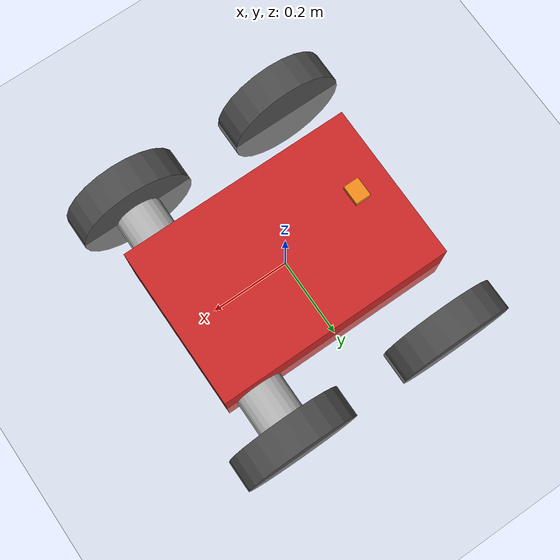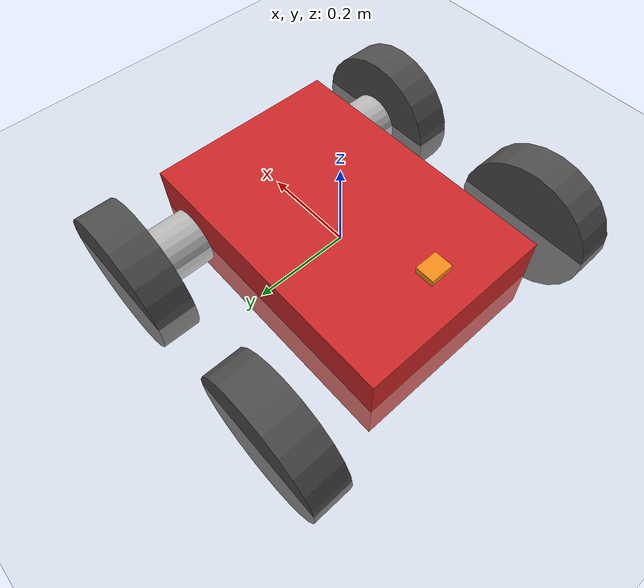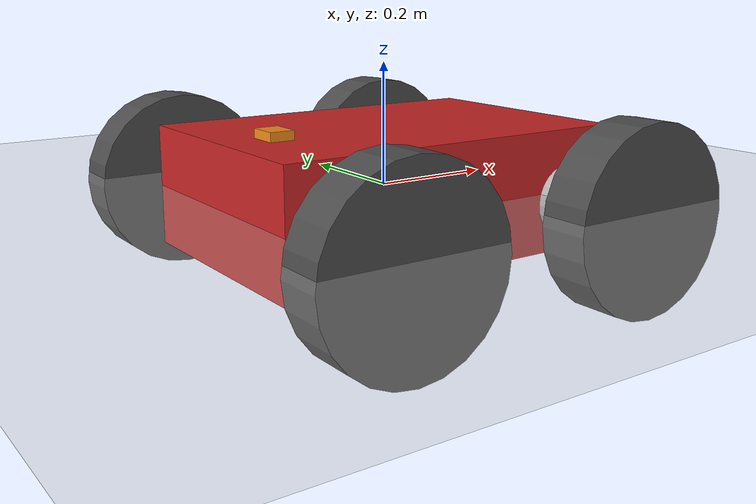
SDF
<?xml version="1.0" ?>
<sdf version="1.8">
  <world name="demo">
    <plugin
      filename="ignition-gazebo-physics-system"
      name="ignition::gazebo::systems::Physics">
    </plugin>
    <plugin
      filename="ignition-gazebo-sensors-system"
      name="ignition::gazebo::systems::Sensors">
      <render_engine>ogre2</render_engine>
    </plugin>
    <plugin
      filename="ignition-gazebo-scene-broadcaster-system"
      name="ignition::gazebo::systems::SceneBroadcaster">
    </plugin>
    <plugin
      filename="ignition-gazebo-user-commands-system"
      name="ignition::gazebo::systems::UserCommands">
    </plugin>
    <plugin
      filename="BasicSystem"
      name="ros_gz_example_gazebo::BasicSystem">
    </plugin>
    <plugin
      filename="FullSystem"
      name="ros_gz_example_gazebo::FullSystem">
    </plugin>

    <light name="sun" type="directional">
      <cast_shadows>true</cast_shadows>
      <pose>0 0 10 0 0 0</pose>
      <diffuse>0.8 0.8 0.8 1</diffuse>
      <specular>0.2 0.2 0.2 1</specular>
      <attenuation>
        <range>1000</range>
        <constant>0.9</constant>
        <linear>0.01</linear>
        <quadratic>0.001</quadratic>
      </attenuation>
      <direction>-0.5 0.1 -0.9</direction>
    </light>

    <model name="ground_plane">
      <static>true</static>
      <link name="link">
        <collision name="collision">
          <geometry>
            <plane>
              <normal>0 0 1</normal>
              <size>100 100</size>
            </plane>
          </geometry>
        </collision>
        <visual name="visual">
          <geometry>
            <plane>
              <normal>0 0 1</normal>
              <size>100 100</size>
            </plane>
          </geometry>
          <material>
            <ambient>0.8 0.8 0.8 1</ambient>
            <diffuse>0.8 0.8 0.8 1</diffuse>
            <specular>0.8 0.8 0.8 1</specular>
          </material>
        </visual>
      </link>
    </model>

    <model name="arv">
      <self_collide>true</self_collide>
      <pose>0 0 0 0 0 0</pose>
      <include merge="true">
        <uri>package://arv_description/models/</uri>
      </include>

      <plugin
        filename="ignition-gazebo-joint-state-publisher-system"
        name="ignition::gazebo::systems::JointStatePublisher">
      </plugin>

      <plugin
        filename="ignition-gazebo-pose-publisher-system"
        name="ignition::gazebo::systems::PosePublisher">
        <publish_link_pose>true</publish_link_pose>
        <use_pose_vector_msg>true</use_pose_vector_msg>
        <static_publisher>true</static_publisher>
        <static_update_frequency>1</static_update_frequency>
      </plugin>

      <plugin
        filename="ignition-gazebo-odometry-publisher-system"
        name="ignition::gazebo::systems::OdometryPublisher">
        <odom_frame>arv/odom</odom_frame>
        <robot_base_frame>arv</robot_base_frame>
      </plugin>
    </model>

  </world>
</sdf>

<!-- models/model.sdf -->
<sdf version='1.9'>
  <model name='arv'>
    <link name='base_link'>
      <inertial>
        <pose>0 0 0 0 0 0</pose>
        <mass>40</mass>
        <inertia>
          <ixx>0.68969666666666651</ixx>
          <ixy>0</ixy>
          <ixz>0</ixz>
          <iyy>1.349446666666666</iyy>
          <iyz>0</iyz>
          <izz>1.349446666666666</izz>
        </inertia>
      </inertial>
      <collision name='base_link_collision'>
        <pose>0 0 0 0 0 0</pose>
        <geometry>
          <box>
            <size>0.605 0.41 0.197</size>
          </box>
        </geometry>
        <surface>
          <contact>
            <ode/>
          </contact>
          <friction>
            <ode/>
          </friction>
        </surface>
      </collision>
      <visual name='base_link_visual'>
        <pose>0 0 0 0 0 0</pose>
        <geometry>
          <box>
            <size>0.605 0.41 0.197</size>
          </box>
        </geometry>
        <material>
          <script>
            <name>Gazebo/Red</name>
            <uri>file://media/materials/scripts/gazebo.material</uri>
          </script>
          <diffuse>1 0 0.125 1</diffuse>
          <ambient>1 0 0.125 1</ambient>
        </material>
      </visual>
    </link>
    <joint name='LEFT_HINGE_JOINT' type='revolute'>
      <pose relative_to='base_link'>0.2159 0.255 -0.0185 -1.570796326794896 0 0</pose>
      <parent>base_link</parent>
      <child>LEFT_HINGE</child>
      <axis>
        <xyz>0 1 0</xyz>
        <limit>
          <lower>-1</lower>
          <upper>1</upper>
          <effort>100</effort>
          <velocity>1</velocity>
        </limit>
        <dynamics>
          <damping>0</damping>
          <friction>0</friction>
          <spring_reference>0</spring_reference>
          <spring_stiffness>0</spring_stiffness>
        </dynamics>
      </axis>
    </joint>
    <link name='LEFT_HINGE'>
      <pose relative_to='LEFT_HINGE_JOINT'>0 0 0 0 0 0</pose>
      <inertial>
        <pose>0 0 0 0 0 0</pose>
        <mass>0.20000000000000001</mass>
        <inertia>
          <ixx>0.00034666666666666662</ixx>
          <ixy>0</ixy>
          <ixz>0</ixz>
          <iyy>0.00034666666666666662</iyy>
          <iyz>0</iyz>
          <izz>0.00036000000000000002</izz>
        </inertia>
      </inertial>
      <visual name='LEFT_HINGE_visual'>
        <pose>0 0 0 0 0 0</pose>
        <geometry>
          <cylinder>
            <length>0.10000000000000001</length>
            <radius>0.059999999999999998</radius>
          </cylinder>
        </geometry>
      </visual>
    </link>
    <joint name='LEFT_FRONT_WHEEL_JOINT' type='revolute'>
      <pose relative_to='LEFT_HINGE'>0 0 0.09 0 0 0</pose>
      <parent>LEFT_HINGE</parent>
      <child>LEFT_FRONT_WHEEL</child>
      <axis>
        <xyz>0 1 0</xyz>
        <limit>
          <effort>1</effort>
          <velocity>1</velocity>
          <lower>-10000000000000000</lower>
          <upper>10000000000000000</upper>
        </limit>
        <dynamics>
          <damping>1</damping>
          <friction>0</friction>
          <spring_reference>0</spring_reference>
          <spring_stiffness>0</spring_stiffness>
        </dynamics>
      </axis>
    </joint>
    <link name='LEFT_FRONT_WHEEL'>
      <pose relative_to='LEFT_FRONT_WHEEL_JOINT'>0 0 0 0 0 0</pose>
      <inertial>
        <pose>0 0 0 0 0 0</pose>
        <mass>5</mass>
        <inertia>
          <ixx>0.030791666666666662</ixx>
          <ixy>0</ixy>
          <ixz>0</ixz>
          <iyy>0.030791666666666662</iyy>
          <iyz>0</iyz>
          <izz>0.056249999999999988</izz>
        </inertia>
      </inertial>
      <collision name='LEFT_FRONT_WHEEL_collision'>
        <pose>0 0 0 0 0 0</pose>
        <geometry>
          <cylinder>
            <length>0.080000000000000002</length>
            <radius>0.14999999999999999</radius>
          </cylinder>
        </geometry>
        <surface>
          <contact>
            <ode>
              <kp>10000000</kp>
              <kd>1</kd>
              <max_vel>100</max_vel>
              <min_depth>0.0050000000000000001</min_depth>
            </ode>
          </contact>
          <friction>
            <ode>
              <mu>0.5</mu>
              <mu2>0.5</mu2>
              <fdir1>1 0 0</fdir1>
            </ode>
          </friction>
        </surface>
      </collision>
      <visual name='LEFT_FRONT_WHEEL_visual'>
        <pose>0 0 0 0 0 0</pose>
        <geometry>
          <cylinder>
            <length>0.080000000000000002</length>
            <radius>0.14999999999999999</radius>
          </cylinder>
        </geometry>
        <material>
          <script>
            <name>Gazebo/DarkGrey</name>
            <uri>file://media/materials/scripts/gazebo.material</uri>
          </script>
        </material>
      </visual>
    </link>
    <joint name='LEFT_REAR_WHEEL_JOINT' type='revolute'>
      <pose relative_to='base_link'>-0.2159 0.345 -0.0185 1.570796326794896 0 0</pose>
      <parent>base_link</parent>
      <child>LEFT_REAR_WHEEL</child>
      <axis>
        <xyz>0 0 1</xyz>
        <limit>
          <effort>1</effort>
          <velocity>1</velocity>
          <lower>-10000000000000000</lower>
          <upper>10000000000000000</upper>
        </limit>
        <dynamics>
          <damping>1</damping>
          <friction>0</friction>
          <spring_reference>0</spring_reference>
          <spring_stiffness>0</spring_stiffness>
        </dynamics>
      </axis>
    </joint>
    <link name='LEFT_REAR_WHEEL'>
      <pose relative_to='LEFT_REAR_WHEEL_JOINT'>0 0 0 0 0 0</pose>
      <inertial>
        <pose>0 0 0 0 0 0</pose>
        <mass>5</mass>
        <inertia>
          <ixx>0.030791666666666662</ixx>
          <ixy>0</ixy>
          <ixz>0</ixz>
          <iyy>0.030791666666666662</iyy>
          <iyz>0</iyz>
          <izz>0.056249999999999988</izz>
        </inertia>
      </inertial>
      <collision name='LEFT_REAR_WHEEL_collision'>
        <pose>0 0 0 0 0 0</pose>
        <geometry>
          <cylinder>
            <length>0.080000000000000002</length>
            <radius>0.14999999999999999</radius>
          </cylinder>
        </geometry>
        <surface>
          <contact>
            <ode>
              <kp>10000000</kp>
              <kd>1</kd>
              <max_vel>100</max_vel>
              <min_depth>0.0050000000000000001</min_depth>
            </ode>
          </contact>
          <friction>
            <ode>
              <mu>0</mu>
              <mu2>0</mu2>
              <fdir1>1 0 0</fdir1>
            </ode>
          </friction>
        </surface>
      </collision>
      <visual name='LEFT_REAR_WHEEL_visual'>
        <pose>0 0 0 0 0 0</pose>
        <geometry>
          <cylinder>
            <length>0.080000000000000002</length>
            <radius>0.14999999999999999</radius>
          </cylinder>
        </geometry>
        <material>
          <script>
            <name>Gazebo/DarkGrey</name>
            <uri>file://media/materials/scripts/gazebo.material</uri>
          </script>
        </material>
      </visual>
    </link>
    <joint name='RIGHT_HINGE_JOINT' type='revolute'>
      <pose relative_to='base_link'>0.2159 -0.255 -0.0185 -1.570796326794896 0 0</pose>
      <parent>base_link</parent>
      <child>RIGHT_HINGE</child>
      <axis>
        <xyz>0 1 0</xyz>
        <limit>
          <lower>-1</lower>
          <upper>1</upper>
          <effort>100</effort>
          <velocity>1</velocity>
        </limit>
        <dynamics>
          <damping>0</damping>
          <friction>0</friction>
          <spring_reference>0</spring_reference>
          <spring_stiffness>0</spring_stiffness>
        </dynamics>
      </axis>
    </joint>
    <link name='RIGHT_HINGE'>
      <pose relative_to='RIGHT_HINGE_JOINT'>0 0 0 0 0 0</pose>
      <inertial>
        <pose>0 0 0 0 0 0</pose>
        <mass>0.20000000000000001</mass>
        <inertia>
          <ixx>0.00034666666666666662</ixx>
          <ixy>0</ixy>
          <ixz>0</ixz>
          <iyy>0.00034666666666666662</iyy>
          <iyz>0</iyz>
          <izz>0.00036000000000000002</izz>
        </inertia>
      </inertial>
      <visual name='RIGHT_HINGE_visual'>
        <pose>0 0 0 0 0 0</pose>
        <geometry>
          <cylinder>
            <length>0.10000000000000001</length>
            <radius>0.059999999999999998</radius>
          </cylinder>
        </geometry>
      </visual>
    </link>
    <joint name='RIGHT_FRONT_WHEEL_JOINT' type='revolute'>
      <pose relative_to='RIGHT_HINGE'>0 0 -0.09 0 0 0</pose>
      <parent>RIGHT_HINGE</parent>
      <child>RIGHT_FRONT_WHEEL</child>
      <axis>
        <xyz>0 1 0</xyz>
        <limit>
          <effort>1</effort>
          <velocity>1</velocity>
          <lower>-10000000000000000</lower>
          <upper>10000000000000000</upper>
        </limit>
        <dynamics>
          <damping>1</damping>
          <friction>0</friction>
          <spring_reference>0</spring_reference>
          <spring_stiffness>0</spring_stiffness>
        </dynamics>
      </axis>
    </joint>
    <link name='RIGHT_FRONT_WHEEL'>
      <pose relative_to='RIGHT_FRONT_WHEEL_JOINT'>0 0 0 0 0 0</pose>
      <inertial>
        <pose>0 0 0 0 0 0</pose>
        <mass>5</mass>
        <inertia>
          <ixx>0.030791666666666662</ixx>
          <ixy>0</ixy>
          <ixz>0</ixz>
          <iyy>0.030791666666666662</iyy>
          <iyz>0</iyz>
          <izz>0.056249999999999988</izz>
        </inertia>
      </inertial>
      <collision name='RIGHT_FRONT_WHEEL_collision'>
        <pose>0 0 0 0 0 0</pose>
        <geometry>
          <cylinder>
            <length>0.080000000000000002</length>
            <radius>0.14999999999999999</radius>
          </cylinder>
        </geometry>
        <surface>
          <contact>
            <ode>
              <kp>10000000</kp>
              <kd>1</kd>
              <max_vel>100</max_vel>
              <min_depth>0.0050000000000000001</min_depth>
            </ode>
          </contact>
          <friction>
            <ode>
              <mu>0.5</mu>
              <mu2>0.5</mu2>
              <fdir1>1 0 0</fdir1>
            </ode>
          </friction>
        </surface>
      </collision>
      <visual name='RIGHT_FRONT_WHEEL_visual'>
        <pose>0 0 0 0 0 0</pose>
        <geometry>
          <cylinder>
            <length>0.080000000000000002</length>
            <radius>0.14999999999999999</radius>
          </cylinder>
        </geometry>
        <material>
          <script>
            <name>Gazebo/DarkGrey</name>
            <uri>file://media/materials/scripts/gazebo.material</uri>
          </script>
        </material>
      </visual>
    </link>
    <joint name='RIGHT_REAR_WHEEL_JOINT' type='revolute'>
      <pose relative_to='base_link'>-0.2159 -0.345 -0.0185 1.570796326794896 0 0</pose>
      <parent>base_link</parent>
      <child>RIGHT_REAR_WHEEL</child>
      <axis>
        <xyz>0 0 1</xyz>
        <limit>
          <effort>1</effort>
          <velocity>1</velocity>
          <lower>-10000000000000000</lower>
          <upper>10000000000000000</upper>
        </limit>
        <dynamics>
          <damping>1</damping>
          <friction>0</friction>
          <spring_reference>0</spring_reference>
          <spring_stiffness>0</spring_stiffness>
        </dynamics>
      </axis>
    </joint>
    <link name='RIGHT_REAR_WHEEL'>
      <pose relative_to='RIGHT_REAR_WHEEL_JOINT'>0 0 0 0 0 0</pose>
      <inertial>
        <pose>0 0 0 0 0 0</pose>
        <mass>5</mass>
        <inertia>
          <ixx>0.030791666666666662</ixx>
          <ixy>0</ixy>
          <ixz>0</ixz>
          <iyy>0.030791666666666662</iyy>
          <iyz>0</iyz>
          <izz>0.056249999999999988</izz>
        </inertia>
      </inertial>
      <collision name='RIGHT_REAR_WHEEL_collision'>
        <pose>0 0 0 0 0 0</pose>
        <geometry>
          <cylinder>
            <length>0.080000000000000002</length>
            <radius>0.14999999999999999</radius>
          </cylinder>
        </geometry>
        <surface>
          <contact>
            <ode>
              <kp>10000000</kp>
              <kd>1</kd>
              <max_vel>100</max_vel>
              <min_depth>0.0050000000000000001</min_depth>
            </ode>
          </contact>
          <friction>
            <ode>
              <mu>0</mu>
              <mu2>0</mu2>
              <fdir1>1 0 0</fdir1>
            </ode>
          </friction>
        </surface>
      </collision>
      <visual name='RIGHT_REAR_WHEEL_visual'>
        <pose>0 0 0 0 0 0</pose>
        <geometry>
          <cylinder>
            <length>0.080000000000000002</length>
            <radius>0.14999999999999999</radius>
          </cylinder>
        </geometry>
        <material>
          <script>
            <name>Gazebo/DarkGrey</name>
            <uri>file://media/materials/scripts/gazebo.material</uri>
          </script>
        </material>
      </visual>
    </link>
    <joint name='imu_joint' type='fixed'>
      <pose relative_to='base_link'>-0.2159 -0.02397 0.1035 0 0 0</pose>
      <parent>base_link</parent>
      <child>imu_link</child>
      <axis>
        <dynamics>
          <spring_reference>0</spring_reference>
          <spring_stiffness>0</spring_stiffness>
        </dynamics>
        <xyz>0 0 1</xyz>
        <limit>
          <lower>-10000000000000000</lower>
          <upper>10000000000000000</upper>
        </limit>
      </axis>
      <physics>
        <ode>
          <limit>
            <cfm>0</cfm>
            <erp>0.20000000000000001</erp>
          </limit>
        </ode>
      </physics>
    </joint>
    <link name='imu_link'>
      <pose relative_to='imu_joint'>0 0 0 0 0 0</pose>
      <inertial>
        <pose>0 0 0 0 0 0</pose>
        <mass>0.001</mass>
        <inertia>
          <ixx>0.0001</ixx>
          <ixy>0</ixy>
          <ixz>0</ixz>
          <iyy>9.9999999999999995e-07</iyy>
          <iyz>0</iyz>
          <izz>0.0001</izz>
        </inertia>
      </inertial>
      <collision name='imu_link_collision'>
        <pose>0 0 0 0 0 0</pose>
        <geometry>
          <box>
            <size>0.001 0.001 0.001</size>
          </box>
        </geometry>
        <surface>
          <contact>
            <ode/>
          </contact>
          <friction>
            <ode/>
          </friction>
        </surface>
      </collision>
      <visual name='imu_link_visual'>
        <pose>0 0 0 0 0 0</pose>
        <geometry>
          <box>
            <size>0.04 0.05 0.02</size>
          </box>
        </geometry>
        <material>
          <script>
            <name>Gazebo/Orange</name>
            <uri>file://media/materials/scripts/gazebo.material</uri>
          </script>
        </material>
      </visual>
      <gravity>true</gravity>
      <sensor name='imu_sensor' type='imu'>
        <always_on>true</always_on>
        <update_rate>400</update_rate>
        <visualize>true</visualize>
        <topic>__default_topic__</topic>
        <plugin name='imu_plugin' filename='libgazebo_ros_imu_sensor.so'>
          <topicName>imu</topicName>
          <bodyName>imu_link</bodyName>
          <updateRateHZ>10.0</updateRateHZ>
          <gaussianNoise>0.0</gaussianNoise>
          <xyzOffset>0 0 0</xyzOffset>
          <rpyOffset>0 0 0</rpyOffset>
          <frameName>imu_link</frameName>
          <initialOrientationAsReference>false</initialOrientationAsReference>
        </plugin>
        <pose>0 0 0 0 0 0</pose>
      </sensor>
    </link>
    <plugin name='gazebo_ros2_control' filename='libgazebo_ros2_control.so'>
      <robotNamespace/>
      <robotParam>robot_description</robotParam>
    </plugin>
    <frame name='base_to_base_inertia' attached_to='base_link'>
      <pose>0 0 0 0 -0 0</pose>
    </frame>
    <frame name='base_inertia' attached_to='base_to_base_inertia'/>
  </model>
</sdf>
